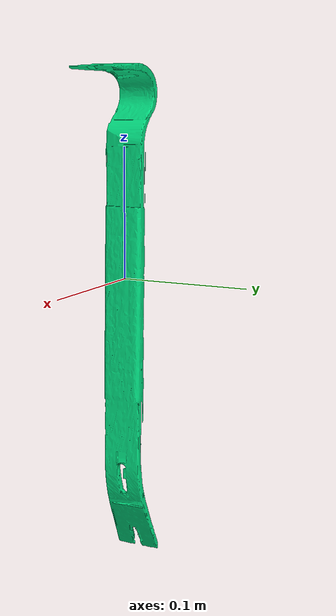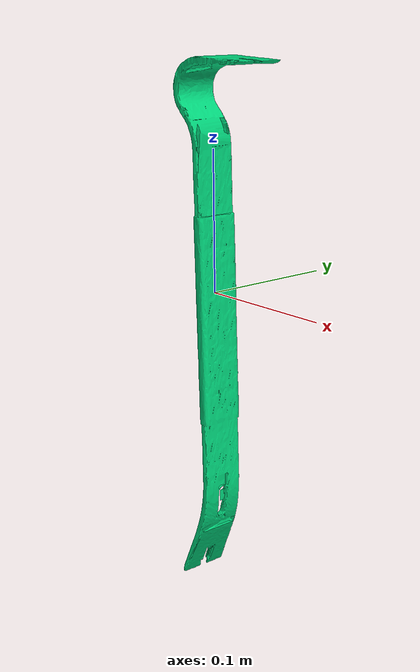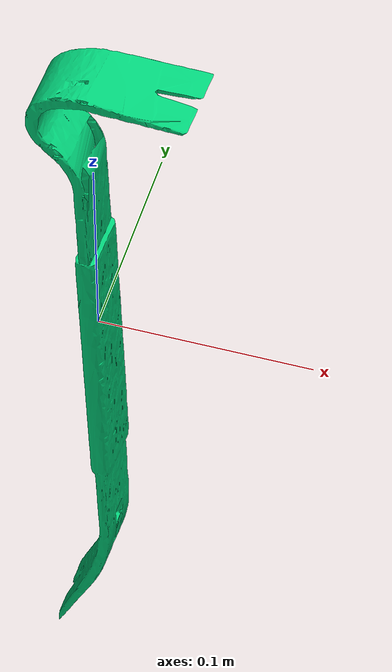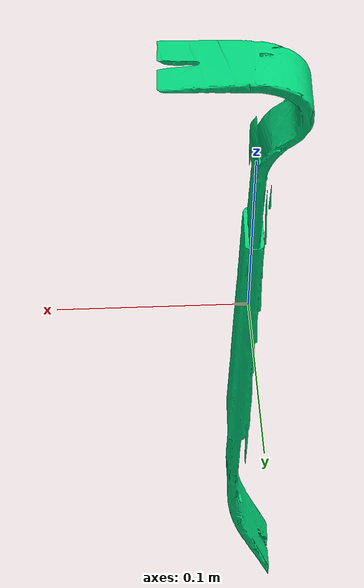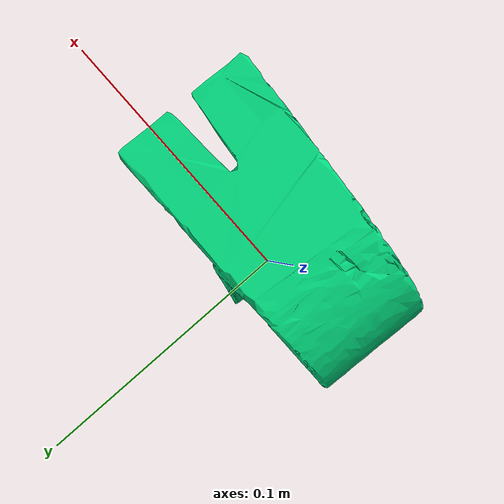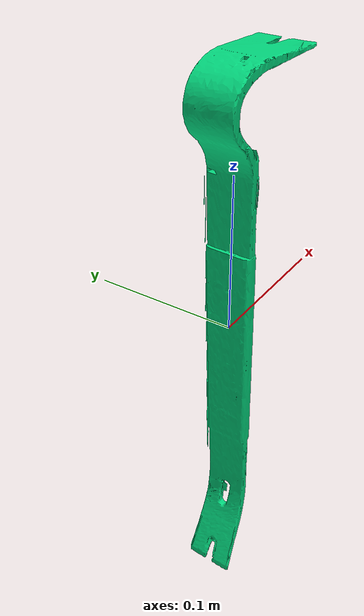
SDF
<?xml version="1.0"?>
<sdf version="1.7">
  <model name="pry_bar_15in_bright">
    <pose>0 0 0 0 0 0</pose>
    <static>false</static>
    <link name="link">
      <!-- link frame = tool CoM; Z = long axis (+ toward tool end), X = forward, Y = Z x X -->
      <inertial>
        <pose>0 0 0 0 0 0</pose>
        <mass>0.512176</mass>
        <inertia>
          <ixx>6.915462e-03</ixx>
          <ixy>4.940489e-07</ixy>
          <ixz>-1.215835e-05</ixz>
          <iyy>6.930539e-03</iyy>
          <iyz>1.705310e-07</iyz>
          <izz>9.280279e-05</izz>
        </inertia>
      </inertial>
      <collision name="collision">
        <geometry>
          <mesh>
            <uri>model://pry_bar_15in/meshes/pry_bar_15in.dae</uri>
          </mesh>
        </geometry>
      </collision>
      <visual name="visual">
        <geometry>
          <mesh>
            <uri>model://pry_bar_15in/meshes/pry_bar_15in.dae</uri>
          </mesh>
        </geometry>
        <material>
          <ambient>0.000 0.369 0.214 1.0</ambient>
          <diffuse>0.000 0.820 0.476 1.0</diffuse>
          <specular>0.85 0.85 0.85 1.0</specular>
          <emissive>0 0 0 1.0</emissive>
        </material>
      </visual>
    </link>
  </model>
</sdf>
